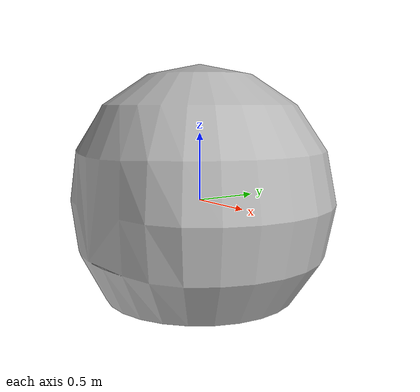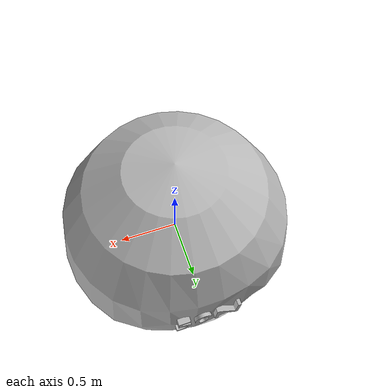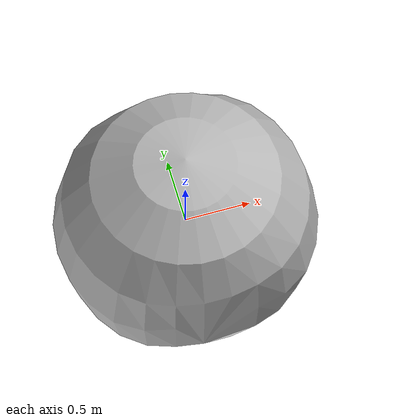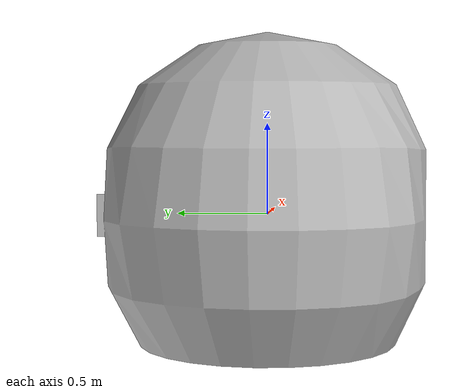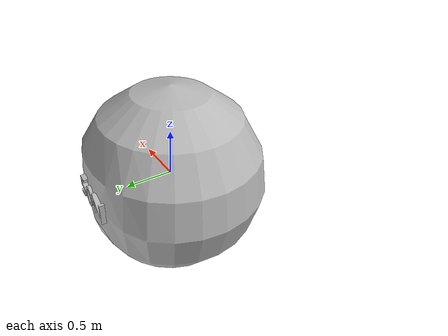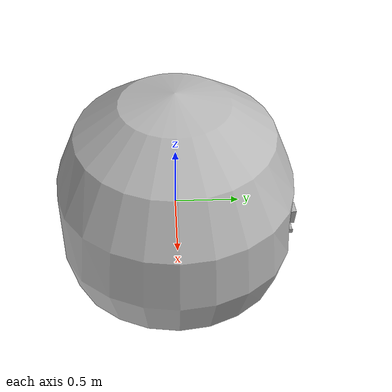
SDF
<?xml version="1.0"?>
<sdf version="1.8" xmlns:drake="drake.mit.edu">
  <model name="weight">
    <link name="weight_body">
      <inertial>
        <mass>5.0985810649</mass>
        <pose>0 0 0 0 0 0</pose>
        <inertia>
          <ixx>0.0010833333333333333</ixx>
          <ixy>0.0</ixy>
          <ixz>0.0</ixz>
          <iyy>0.00425</iyy>
          <iyz>0.0</iyz>
          <izz>0.004083333333333333</izz>
        </inertia>
      </inertial>
      <visual name="weight_body_visual">
        <geometry>
          <mesh>
            <uri>package://finger_description/meshes/weight.obj</uri>
          </mesh>
        </geometry>
      </visual>
      <collision name="weight_body_collision">
        <geometry>
          <mesh>
            <uri>package://finger_description/meshes/weight.obj</uri>
          </mesh>
        </geometry>
        <drake:proximity_properties>
          <drake:compliant_hydroelastic/>
          <drake:hydroelastic_modulus>1e7</drake:hydroelastic_modulus>
          <drake:mesh_resolution_hint>0.003</drake:mesh_resolution_hint>
          <drake:mu_static value="50.0"/>
          <drake:mu_dynamic value="50.0"/>
        </drake:proximity_properties>
      </collision>
    </link>
  </model>
</sdf>
